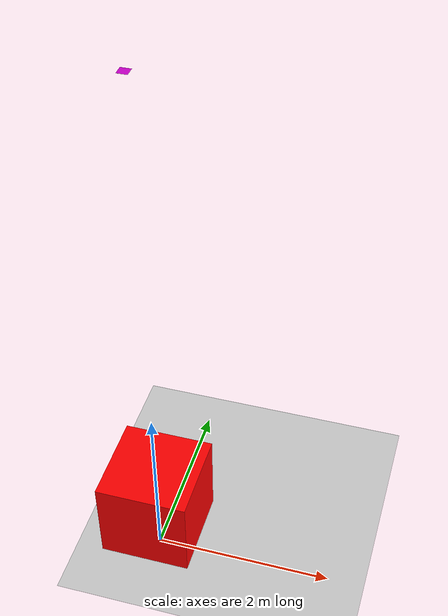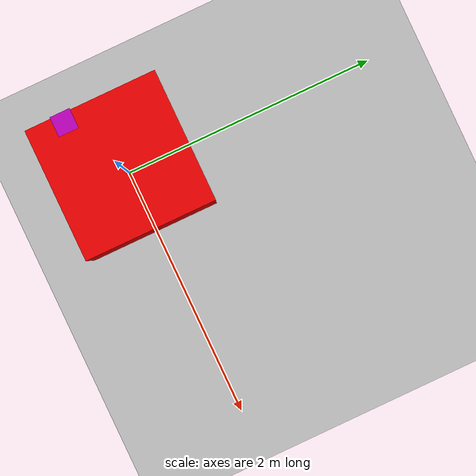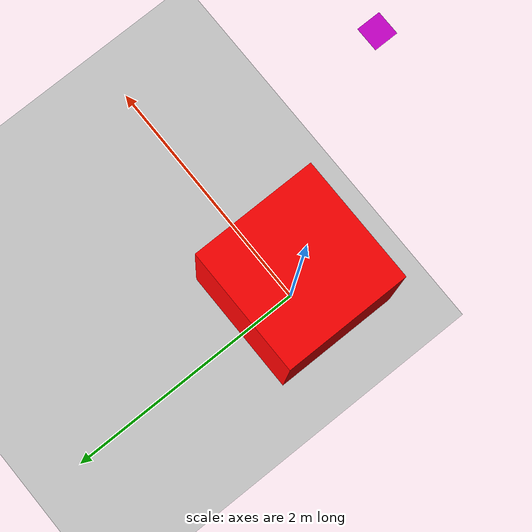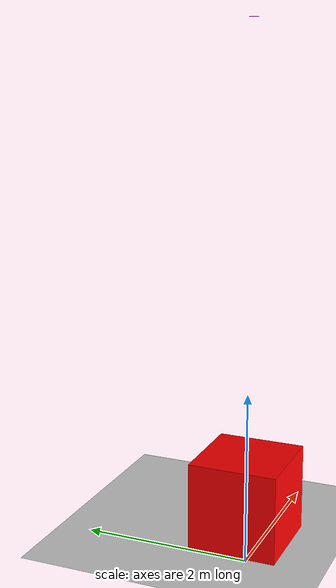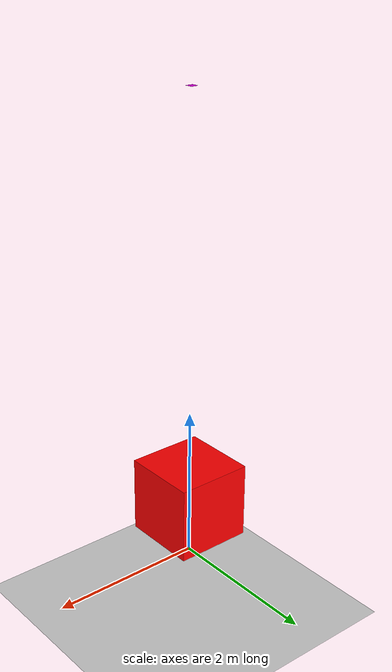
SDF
<?xml version="1.0" ?>
<sdf version="1.11">
  <world name="shapes">

    <plugin
      filename="wgpu_rt_sensor" name="wgpu_sensor::WGPURtSensor"/>

    <plugin filename="gz-sim-physics-system"
            name="gz::sim::systems::Physics">
    </plugin>
    <plugin filename="gz-sim-user-commands-system"
            name="gz::sim::systems::UserCommands">
    </plugin>
    <plugin
      filename="gz-sim-scene-broadcaster-system"
      name="gz::sim::systems::SceneBroadcaster"/>

    <scene>
      <ambient>1.0 1.0 1.0</ambient>
      <background>0.8 0.8 0.8</background>
    </scene>

    <physics name="1ms" type="dart">
      <max_step_size>0.001</max_step_size>
      <real_time_factor>0</real_time_factor>
    </physics>

    <light type="directional" name="sun">
      <cast_shadows>true</cast_shadows>
      <pose>0 0 10 0 0 0</pose>
      <diffuse>0.8 0.8 0.8 1</diffuse>
      <specular>0.2 0.2 0.2 1</specular>
      <attenuation>
        <range>1000</range>
        <constant>0.9</constant>
        <linear>0.01</linear>
        <quadratic>0.001</quadratic>
      </attenuation>
      <direction>-0.5 0.1 -0.9</direction>
    </light>

    <model name="camera">
      <pose>0 0 6.0 0 0 0</pose>
      <static>true</static>
      <link name="link">
        <collision name="collision">
          <geometry>
            <plane>
              <normal>0 0 1</normal>
              <size>0.1 0.1</size>
            </plane>
          </geometry>
        </collision>
        <visual name="visual">
          <geometry>
            <plane>
              <normal>0 0 1</normal>
              <size>0.1 0.1</size>
            </plane>
          </geometry>
          <material>
            <ambient>0.8 0.0 0.8 1</ambient>
            <diffuse>0.8 0.0 0.8 1</diffuse>
            <specular>0.8 0.0 0.8 1</specular>
          </material>
        </visual>

        <!-- Custom Camera Sensor -->
        <sensor name="my_rt_camera" type="custom" gz:type="rt_camera">
          <pose>0 0 0.1 0 0 0</pose> <!-- Local pose relative to this link -->
          <always_on>1</always_on>
          <update_rate>10</update_rate>
          <gz:rt_camera>
            <fov>1.047</fov> <!-- Example FOV: 60 degrees -->
          </gz:rt_camera>
        </sensor>
      </link>
    </model>

    <model name="ground_plane">
      <static>true</static>
      <link name="link">
        <collision name="collision">
          <geometry>
            <plane>
              <normal>0 0 1</normal>
              <size>20 20</size>
            </plane>
          </geometry>
        </collision>
        <visual name="visual">
          <geometry>
            <plane>
              <normal>0 0 1</normal>
              <size>20 20</size>
            </plane>
          </geometry>
          <material>
            <ambient>0.8 0.8 0.8 1</ambient>
            <diffuse>0.8 0.8 0.8 1</diffuse>
            <specular>0.8 0.8 0.8 1</specular>
          </material>
        </visual>
      </link>
    </model>

    <model name="box">
      <pose>0 0 0.8 0 0 0</pose>
      <link name="box_link">
        <inertial>
          <inertia>
            <ixx>0.16666</ixx>
            <ixy>0</ixy>
            <ixz>0</ixz>
            <iyy>0.16666</iyy>
            <iyz>0</iyz>
            <izz>0.16666</izz>
          </inertia>
          <mass>1.0</mass>
        </inertial>
        <collision name="box_collision">
          <geometry>
            <box>
              <size>1 1 1</size>
            </box>
          </geometry>
        </collision>

        <visual name="box_visual">
          <geometry>
            <box>
              <size>1 1 1</size>
            </box>
          </geometry>
          <material>
            <ambient>1 0 0 1</ambient>
            <diffuse>1 0 0 1</diffuse>
            <specular>1 0 0 1</specular>
          </material>
        </visual>
      </link>
    </model>

  </world>
</sdf>
